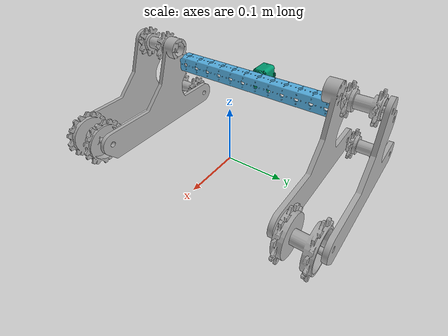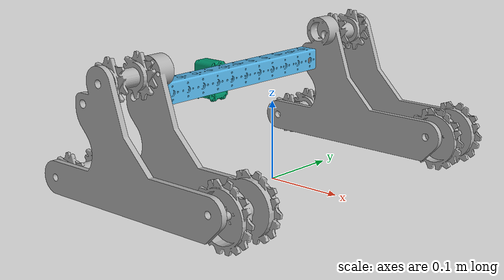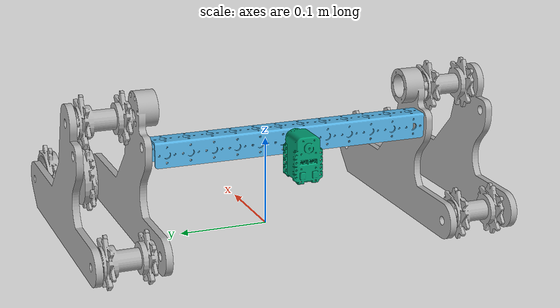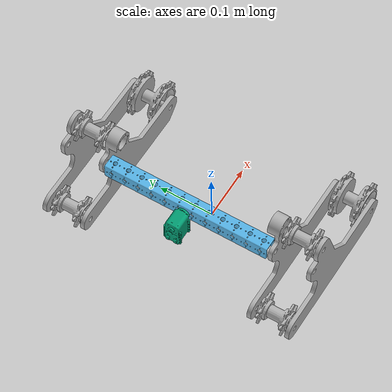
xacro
<?xml version="1.0" ?>
<robot name="aaly" xmlns:xacro="http://ros.org/wiki/xacro">

  <joint name="fixed" type="fixed">
      <parent link="world"/>
      <child link="aaly__base_link"/>
  </joint>

  <joint name="aaly__j1" type="revolute">
    <parent link="aaly__base_link"/>
    <child link="aaly__motor1"/>
    <origin rpy="0 0 0" xyz="-0.107 0 0.12427"/>
    <axis xyz="1 0 0"/>
    <limit effort="0" lower="0" upper="0" velocity="0"/>
  </joint>

  <joint name="aaly__Left_Track_Side_joint" type="fixed">
    <parent link="aaly__base_link"/>
    <child link="aaly__Left_Side_Track_Support"/>
    <origin rpy="0 0 0" xyz="-0.01373 -0.15812 0.06562"/>
    <axis xyz="0 0 0"/>
    <limit effort="0" lower="0" upper="0" velocity="0"/>
  </joint>

  <joint name="aaly__Right_Track_Side_joint" type="fixed">
    <parent link="aaly__base_link"/>
    <child link="aaly__Right_Side_Track_Support"/>
    <origin rpy="0 0 0" xyz="-0.01373 0.15812 0.07062"/>
    <axis xyz="0 0 0"/>
    <limit effort="0" lower="0" upper="0" velocity="0"/>
  </joint>

  <joint name="aaly__drum_joint1" type="fixed">
    <parent link="aaly__Left_Side_Track_Support"/>
    <child link="aaly__drum1"/>
    <origin rpy="1.57079 0 0" xyz="-0.1091 -0.038 -0.03562"/>
    <axis xyz="0 0 -1"/>
    <limit effort="0" lower="0" upper="0" velocity="0"/>
  </joint>

  <joint name="aaly__drum_joint2" type="fixed">
    <parent link="aaly__Right_Side_Track_Support"/>
    <child link="aaly__drum2"/>
    <origin rpy="1.57079 0 0" xyz="-0.1091 0.038 -0.04062"/>
    <axis xyz="0 0 -1"/>
    <limit effort="0" lower="0" upper="0" velocity="0"/>
  </joint>

  <joint name="aaly__drum_joint3" type="fixed">
    <parent link="aaly__Left_Side_Track_Support"/>
    <child link="aaly__drum3"/>
    <origin rpy="1.57079 0 0" xyz="0.13857 -0.038 -0.028"/>
    <axis xyz="0 0 -1"/>
    <limit effort="0" lower="0" upper="0" velocity="0"/>
  </joint>

  <joint name="aaly__drum_joint4" type="fixed">
    <parent link="aaly__Right_Side_Track_Support"/>
    <child link="aaly__drum4"/>
    <origin rpy="1.57079 0 0" xyz="0.13857 0.038 -0.033"/>
    <axis xyz="0 0 -1"/>
    <limit effort="0" lower="0" upper="0" velocity="0"/>
  </joint>

  <joint name="aaly__drum_joint5" type="fixed">
    <parent link="aaly__Left_Side_Track_Support"/>
    <child link="aaly__drum5"/>
    <origin rpy="1.57079 0 0" xyz="-0.03231 -0.038 0.08871"/>
    <axis xyz="0 0 -1"/>
    <limit effort="0" lower="0" upper="0" velocity="0"/>
  </joint>

  <joint name="aaly__drum_joint6" type="fixed">
    <parent link="aaly__Right_Side_Track_Support"/>
    <child link="aaly__drum6"/>
    <origin rpy="1.57079 0 0" xyz="-0.03231 0.038 0.08371"/>
    <axis xyz="0 0 -1"/>
    <limit effort="0" lower="0" upper="0" velocity="0"/>
  </joint>

  <joint name="aaly__Left_Side_Track_Cover_joint" type="fixed">
    <parent link="aaly__Left_Side_Track_Support"/>
    <child link="aaly__Left_Side_Track_Cover"/>
    <origin rpy="0 0 0" xyz="0.00029 -0.07299 -0.00449"/>
    <axis xyz="0 0 0"/>
    <limit effort="0" lower="0" upper="0" velocity="0"/>
  </joint>

  <joint name="aaly__Right_Side_Track_Cover_joint" type="fixed">
    <parent link="aaly__Right_Side_Track_Support"/>
    <child link="aaly__Right_Side_Track_Cover"/>
    <origin rpy="0 0 0" xyz="0.00029 0.07299 -0.0095"/>
    <axis xyz="0 0 0"/>
    <limit effort="0" lower="0" upper="0" velocity="0"/>
  </joint>

  <!-- Used for fixing robot to Gazebo 'base_link' -->
  <link name="world"/>

  <link name="aaly__base_link">
    <inertial>
      <mass value="0.36"/>
      <origin rpy="0 0 0" xyz="0 0 0"/>
      <inertia ixx="0.0028086383999999997" ixy="0.0" ixz="0.0" iyy="4.3094400000000005e-05" iyz="0.0" izz="0.0028086383999999997"/>
    </inertial>
    <collision name="aaly__base_link_collision">
      <origin rpy="0 0 0" xyz="-0.07 0 0.12427"/>
      <geometry>
        <box size="0.026988 0.3000 0.026988"/>
      </geometry>
    </collision>
    <visual name="aaly__base_link_visual">
      <origin rpy="0 0 0" xyz="-0.07 0 0.12427"/>
      <geometry>
        <mesh filename="package://aaly_urdf/meshes/Horizontal_Support_Bar_ASB-512.dae" scale="1.0 1.0 1.0"/>
      </geometry>
    </visual>
  </link>

  <link name="aaly__motor1">
    <inertial>
      <mass value="0.055"/>
      <origin rpy="0 0 0" xyz="0 0 0"/>
      <inertia ixx="1.8791666666e-05" ixy="0.0" ixz="0.0" iyy="1.7086666666e-05" iyz="0.0" izz="1.2026666666e-05"/>
    </inertial>
    <collision name="aaly__motor1_collision">
      <origin rpy="0 0 0" xyz="0 0 0"/>
      <geometry>
        <box size="0.04 0.032 0.050"/>
      </geometry>
    </collision>
    <visual name="aaly__motor1_visual">
      <origin rpy="0 0 0" xyz="0 0 0"/>
      <geometry>
        <mesh filename="package://aaly_urdf/meshes/AX12-A_origin_same_as_center_of_mass.stl" scale="1.0 1.0 1.0"/>
      </geometry>
    </visual>
  </link>

  <link name="aaly__Left_Side_Track_Support">
    <inertial>
      <mass value="0.05"/>
      <origin rpy="0 0 0" xyz="0 0 0"/>
      <inertia ixx="0" ixy="0" ixz="0" iyy="0" iyz="0" izz="0"/>
    </inertial>
    <collision name="aaly__Left_Side_Track_Support_collision">
      <origin rpy="0 0 0" xyz="0 0 0.015"/>
      <geometry>
        <mesh filename="package://aaly_urdf/meshes/Track_Support_Collision_Mesh.dae" scale="1.0 1.0 1.0"/>
      </geometry>
    </collision>
    <visual name="aaly__Left_Side_Track_Support_visual">
      <origin rpy="0 0 0" xyz="0 0 0"/>
      <geometry>
        <mesh filename="package://aaly_urdf/meshes/Track_Support_Left_Side.dae" scale="1.0 1.0 1.0"/>
      </geometry>
    </visual>
  </link>

  <link name="aaly__Right_Side_Track_Support">
    <inertial>
      <mass value="0.05"/>
      <origin rpy="0 0 0" xyz="0 0 0"/>
      <inertia ixx="0" ixy="0" ixz="0" iyy="0" iyz="0" izz="0"/>
    </inertial>
    <collision name="aaly__Right_Side_Track_Support_collision">
      <origin rpy="0 0 0" xyz="0 0 0.015"/>
      <geometry>
        <mesh filename="package://aaly_urdf/meshes/Track_Support_Collision_Mesh.dae" scale="1.0 1.0 1.0"/>
      </geometry>
    </collision>
    <visual name="aaly__Left_Side_Track_Support_visual">
      <origin rpy="0 0 0" xyz="0 0 0"/>
      <geometry>
        <mesh filename="package://aaly_urdf/meshes/Track_Support_Right_Side.dae" scale="1.0 1.0 1.0"/>
      </geometry>
    </visual>
  </link>

  <link name="aaly__drum1">
    <inertial>
      <mass value="0.1"/>
      <origin rpy="0 0 0" xyz="0 0 0"/>
      <inertia ixx="4.0003370625000006e-05" ixy="0.0" ixz="0.0" iyy="4.0003370625000006e-05" iyz="0.0" izz="3.624778125000001e-05"/>
    </inertial>
    <collision name="aaly__drum1_collision">
      <origin rpy="0 0 0" xyz="0 0 0"/>
      <geometry>
        <cylinder length="0.05124" radius="0.026525"/>
      </geometry>
    </collision>
    <visual name="aaly__drum1_visual">
      <origin rpy="0 0 0" xyz="0 0 0"/>
      <geometry>
        <mesh filename="package://aaly_urdf/meshes/Lynx_Sproket6in_Hub13.dae" scale="1.0 1.0 1.0"/>
      </geometry>
    </visual>
  </link>

  <link name="aaly__drum2">
    <inertial>
      <mass value="0.1"/>
      <origin rpy="0 0 0" xyz="0 0 0"/>
      <inertia ixx="4.0003370625000006e-05" ixy="0.0" ixz="0.0" iyy="4.0003370625000006e-05" iyz="0.0" izz="3.624778125000001e-05"/>
    </inertial>
    <collision name="aaly__drum2_collision">
      <origin rpy="0 0 0" xyz="0 0 0"/>
      <geometry>
        <cylinder length="0.05124" radius="0.026525"/>
      </geometry>
    </collision>
    <visual name="aaly__drum2_visual">
      <origin rpy="0 0 0" xyz="0 0 0"/>
      <geometry>
        <mesh filename="package://aaly_urdf/meshes/Lynx_Sproket6in_Hub13.dae" scale="1.0 1.0 1.0"/>
      </geometry>
    </visual>
  </link>

  <link name="aaly__drum3">
    <inertial>
      <mass value="0.15"/>
      <origin rpy="0 0 0" xyz="0 0 0"/>
      <inertia ixx="5.5414245624999996e-05" ixy="0.0" ixz="0.0" iyy="5.5414245624999996e-05" iyz="0.0" izz="0.000100604296875"/>
    </inertial>
    <collision name="aaly__drum3_collision">
      <origin rpy="0 0 0" xyz="0 0 0"/>
      <geometry>
        <cylinder length="0.05124" radius="0.035625"/>
      </geometry>
    </collision>
    <visual name="aaly__drum3_visual">
      <origin rpy="0 0 0" xyz="0 0 0"/>
      <geometry>
        <mesh filename="package://aaly_urdf/meshes/Lynx_Sproket9in_Hub13.dae" scale="1.0 1.0 1.0"/>
      </geometry>
    </visual>
  </link>

  <link name="aaly__drum4">
    <inertial>
      <mass value="0.15"/>
      <origin rpy="0 0 0" xyz="0 0 0"/>
      <inertia ixx="5.5414245624999996e-05" ixy="0.0" ixz="0.0" iyy="5.5414245624999996e-05" iyz="0.0" izz="0.000100604296875"/>
    </inertial>
    <collision name="aaly__drum4_collision">
      <origin rpy="0 0 0" xyz="0 0 0"/>
      <geometry>
        <cylinder length="0.05124" radius="0.035625"/>
      </geometry>
    </collision>
    <visual name="aaly__drum4_visual">
      <origin rpy="0 0 0" xyz="0 0 0"/>
      <geometry>
        <mesh filename="package://aaly_urdf/meshes/Lynx_Sproket9in_Hub13.dae" scale="1.0 1.0 1.0"/>
      </geometry>
    </visual>
  </link>

  <link name="aaly__drum5">
    <inertial>
      <mass value="0.1"/>
      <origin rpy="0 0 0" xyz="0 0 0"/>
      <inertia ixx="4.0003370625000006e-05" ixy="0.0" ixz="0.0" iyy="4.0003370625000006e-05" iyz="0.0" izz="3.624778125000001e-05"/>
    </inertial>
    <collision name="aaly__drum5_collision">
      <origin rpy="0 0 0" xyz="0 0 0"/>
      <geometry>
        <cylinder length="0.05124" radius="0.026525"/>
      </geometry>
    </collision>
    <visual name="aaly__drum5_visual">
      <origin rpy="0 0 0" xyz="0 0 0"/>
      <geometry>
        <mesh filename="package://aaly_urdf/meshes/Lynx_Sproket6in_Hub13.dae" scale="1.0 1.0 1.0"/>
      </geometry>
    </visual>
  </link>

  <link name="aaly__drum6">
    <inertial>
      <mass value="0.1"/>
      <origin rpy="0 0 0" xyz="0 0 0"/>
      <inertia ixx="4.0003370625000006e-05" ixy="0.0" ixz="0.0" iyy="4.0003370625000006e-05" iyz="0.0" izz="3.624778125000001e-05"/>
    </inertial>
    <collision name="aaly__drum6_collision">
      <origin rpy="0 0 0" xyz="0 0 0"/>
      <geometry>
        <cylinder length="0.05124" radius="0.026525"/>
      </geometry>
    </collision>
    <visual name="aaly__drum6_visual">
      <origin rpy="0 0 0" xyz="0 0 0"/>
      <geometry>
        <mesh filename="package://aaly_urdf/meshes/Lynx_Sproket6in_Hub13.dae" scale="1.0 1.0 1.0"/>
      </geometry>
    </visual>
  </link>

  <link name="aaly__Left_Side_Track_Cover">
    <inertial>
      <mass value="0.05"/>
      <origin rpy="0 0 0" xyz="0 0 0"/>
      <inertia ixx="0" ixy="0" ixz="0" iyy="0" iyz="0" izz="0"/>
    </inertial>
    <collision name="aaly__Left_Side_Track_Cover_collision">
      <origin rpy="0 0 0" xyz="0 0 0.015"/>
      <geometry>
        <mesh filename="package://aaly_urdf/meshes/Track_Support_Collision_Mesh.dae" scale="1.0 1.0 1.0"/>
      </geometry>
    </collision>
    <visual name="aaly__Left_Side_Track_Cover_visual">
      <origin rpy="0 0 0" xyz="0 0 0"/>
      <geometry>
        <mesh filename="package://aaly_urdf/meshes/Track_Support_Cover_Side.dae" scale="1.0 1.0 1.0"/>
      </geometry>
    </visual>
  </link>

  <link name="aaly__Right_Side_Track_Cover">
    <inertial>
      <mass value="0.05"/>
      <origin rpy="0 0 0" xyz="0 0 0"/>
      <inertia ixx="0" ixy="0" ixz="0" iyy="0" iyz="0" izz="0"/>
    </inertial>
    <collision name="aaly__Right_Side_Track_Cover_collision">
      <origin rpy="0 0 0" xyz="0 0 0.015"/>
      <geometry>
        <mesh filename="package://aaly_urdf/meshes/Track_Support_Collision_Mesh.dae" scale="1.0 1.0 1.0"/>
      </geometry>
    </collision>
    <visual name="aaly__Right_Side_Track_Cover_visual">
      <origin rpy="0 0 0" xyz="0 0 0"/>
      <geometry>
        <mesh filename="package://aaly_urdf/meshes/Track_Support_Cover_Side.dae" scale="1.0 1.0 1.0"/>
      </geometry>
    </visual>
  </link>

    <!-- Replaced Gazebo's differential drive plugin with the
         ROS-friendly variant -->

  <!-- Gazebo plugin for ROS Control -->

    <gazebo>
      <plugin name="gazebo_ros_control" filename="libgazebo_ros_control.so">
        <robotNamespace></robotNamespace>
        <robotSimType>gazebo_ros_control/DefaultRobotHWSim</robotSimType>
      </plugin>

      <plugin name='differential_drive_controller'
              filename='libgazebo_ros_diff_drive.so'>
        <alwaysOn>true</alwaysOn>
        <updateRate>100</updateRate>
        <leftJoint>aaly__drum_joint5</leftJoint>
        <rightJoint>aaly__drum_joint6</rightJoint>
        <wheelSeparation>0.349</wheelSeparation>
        <wheelDiameter>0.05885</wheelDiameter>
        <torque>20</torque>
        <commandTopic>cmd_vel</commandTopic>
        <odometryTopic>odom</odometryTopic>
        <odometryFrame>odom</odometryFrame>
        <robotBaseFrame>chassis</robotBaseFrame>
      </plugin>

    </gazebo>

  <transmission name="tran1">
    <type>transmission_interface/SimpleTransmission</type>
    <joint name="aaly__j1">
      <hardwareInterface>hardware_interface/EffortJointInterface</hardwareInterface>
    </joint>
    <actuator name="aaly__motor1">
      <hardwareInterface>hardware_interface/EffortJointInterface</hardwareInterface>
      <mechanicalReduction>1</mechanicalReduction>
    </actuator>
  </transmission>

</robot>
